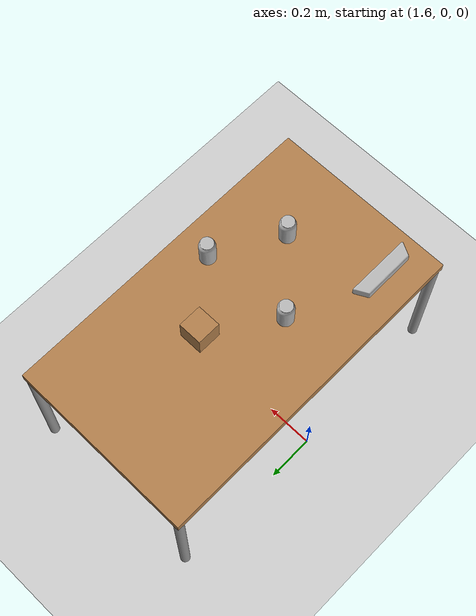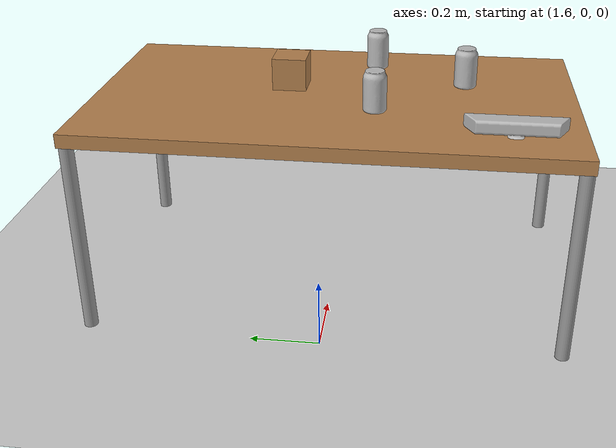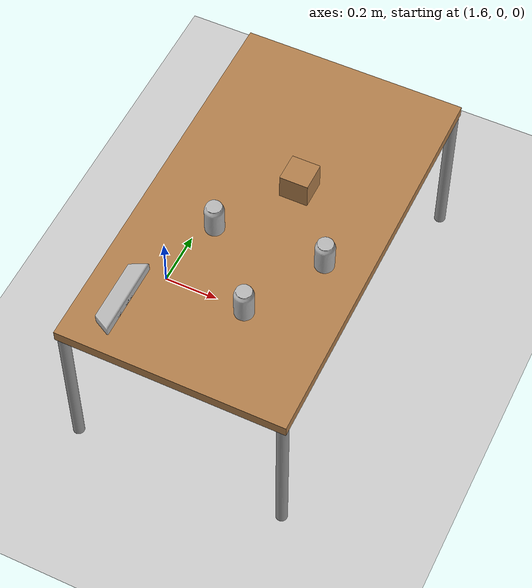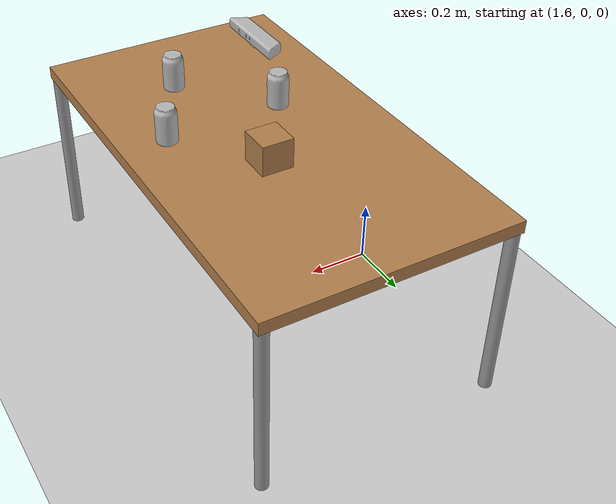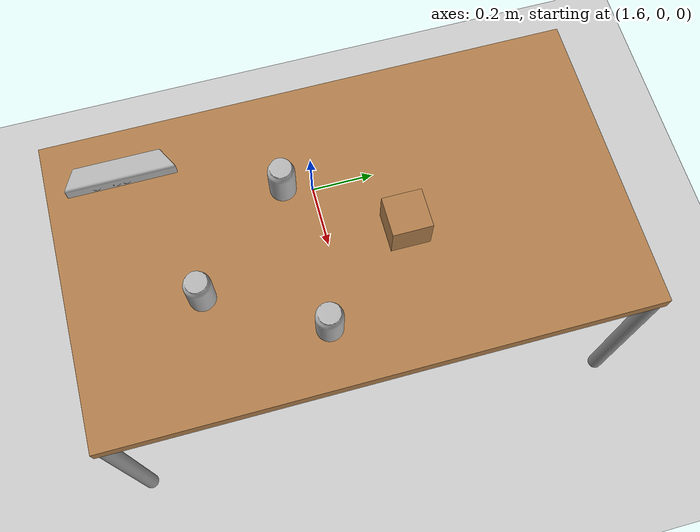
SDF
<sdf version="1.6">
 <world name="default">
  <light name="sun" type="directional">
   <pose>0 0 10 0 -0 0</pose>
   <diffuse>0.8 0.8 0.8 1</diffuse>
   <specular>0.1 0.1 0.1 1</specular>
   <attenuation>
    <range>1000</range>
    <constant>0.9</constant>
    <linear>0.01</linear>
    <quadratic>0.001</quadratic>
   </attenuation>
   <direction>-0.5 0.5 -1</direction>
  </light>
  <model name="ground_plane">
   <static>1</static>
   <link name="link">
    <collision name="collision">
     <geometry><plane><normal>0 0 1</normal><size>100 100</size></plane></geometry>
     <surface><friction><ode><mu>100</mu><mu2>50</mu2></ode></friction></surface>
    </collision>
    <visual name="visual">
     <cast_shadows>0</cast_shadows>
     <geometry><plane><normal>0 0 1</normal><size>100 100</size></plane></geometry>
     <material>
      <script><uri>file://media/materials/scripts/gazebo.material</uri><name>Gazebo/Grey</name></script>
     </material>
    </visual>
   </link>
  </model>
  <gravity>0 0 -9.8</gravity>
  <magnetic_field>6e-06 2.3e-05 -4.2e-05</magnetic_field>
  <atmosphere type="adiabatic"/>
  <physics name="default_physics" default="0" type="ode">
   <max_step_size>0.001</max_step_size>
   <real_time_factor>1</real_time_factor>
   <real_time_update_rate>1000</real_time_update_rate>
  </physics>
  <scene><ambient>0.4 0.4 0.4 1</ambient><background>0.7 0.7 0.7 1</background><shadows>1</shadows></scene>
  <spherical_coordinates>
   <surface_model>EARTH_WGS84</surface_model>
   <latitude_deg>0</latitude_deg>
   <longitude_deg>0</longitude_deg>
   <elevation>0</elevation>
   <heading_deg>0</heading_deg>
  </spherical_coordinates>
  <model name="table_short">
   <link name="link">
    <inertial>
     <inertia><ixx>1</ixx><ixy>0</ixy><ixz>0</ixz><iyy>1</iyy><iyz>0</iyz><izz>1</izz></inertia>
     <mass>1</mass>
    </inertial>
    <kinematic>1</kinematic>
    <visual name="visual1">
     <pose>0 0 0.6 0 -0 0</pose>
     <geometry><box><size>1.4 0.8 0.04</size></box></geometry>
     <material>
      <script><uri>file://media/materials/scripts/gazebo.material</uri><name>Gazebo/Wood</name></script>
      <ambient>1 1 1 1</ambient>
      <diffuse>1 1 1 1</diffuse>
      <specular>0.2 0.2 0.2 1</specular>
      <emissive>0 0 0 1</emissive>
      <shader type="vertex"><normal_map>__default__</normal_map></shader>
     </material>
    </visual>
    <visual name="front_left_leg">
     <pose>0.68 0.38 0.3 0 -0 0</pose>
     <geometry><cylinder><radius>0.02</radius><length>0.6</length></cylinder></geometry>
     <material>
      <script><uri>file://media/materials/scripts/gazebo.material</uri><name>Gazebo/Grey</name></script>
      <ambient>0.3 0.3 0.3 1</ambient>
      <diffuse>0.7 0.7 0.7 1</diffuse>
      <specular>0.01 0.01 0.01 1</specular>
      <emissive>0 0 0 1</emissive>
      <shader type="vertex"><normal_map>__default__</normal_map></shader>
     </material>
    </visual>
    <visual name="front_right_leg">
     <pose>0.68 -0.38 0.3 0 -0 0</pose>
     <geometry><cylinder><radius>0.02</radius><length>0.6</length></cylinder></geometry>
     <material>
      <script><uri>file://media/materials/scripts/gazebo.material</uri><name>Gazebo/Grey</name></script>
      <ambient>0.3 0.3 0.3 1</ambient>
      <diffuse>0.7 0.7 0.7 1</diffuse>
      <specular>0.01 0.01 0.01 1</specular>
      <emissive>0 0 0 1</emissive>
      <shader type="vertex"><normal_map>__default__</normal_map></shader>
     </material>
    </visual>
    <visual name="back_right_leg">
     <pose>-0.68 -0.38 0.3 0 -0 0</pose>
     <geometry><cylinder><radius>0.02</radius><length>0.6</length></cylinder></geometry>
     <material>
      <script><uri>file://media/materials/scripts/gazebo.material</uri><name>Gazebo/Grey</name></script>
      <ambient>0.3 0.3 0.3 1</ambient>
      <diffuse>0.7 0.7 0.7 1</diffuse>
      <specular>0.01 0.01 0.01 1</specular>
      <emissive>0 0 0 1</emissive>
      <shader type="vertex"><normal_map>__default__</normal_map></shader>
     </material>
    </visual>
    <visual name="back_left_leg">
     <pose>-0.68 0.38 0.3 0 -0 0</pose>
     <geometry><cylinder><radius>0.02</radius><length>0.6</length></cylinder></geometry>
     <material>
      <script><uri>file://media/materials/scripts/gazebo.material</uri><name>Gazebo/Grey</name></script>
      <ambient>0.3 0.3 0.3 1</ambient>
      <diffuse>0.7 0.7 0.7 1</diffuse>
      <specular>0.01 0.01 0.01 1</specular>
      <emissive>0 0 0 1</emissive>
      <shader type="vertex"><normal_map>__default__</normal_map></shader>
     </material>
    </visual>
    <collision name="front_left_leg">
     <pose>0.68 0.38 0.3 0 -0 0</pose>
     <geometry><cylinder><radius>0.02</radius><length>0.6</length></cylinder></geometry>
     <surface>
      <friction>
       <ode><mu>1</mu><mu2>1</mu2><fdir1>0 0 0</fdir1><slip1>0</slip1><slip2>0</slip2></ode>
       <torsional>
        <coefficient>1</coefficient>
        <patch_radius>0</patch_radius>
        <surface_radius>0</surface_radius>
        <use_patch_radius>1</use_patch_radius>
        <ode><slip>0</slip></ode>
       </torsional>
      </friction>
      <bounce><restitution_coefficient>0</restitution_coefficient><threshold>1e+06</threshold></bounce>
      <contact>
       <collide_without_contact>0</collide_without_contact>
       <collide_without_contact_bitmask>1</collide_without_contact_bitmask>
       <collide_bitmask>1</collide_bitmask>
       <ode>
        <soft_cfm>0</soft_cfm>
        <soft_erp>0.2</soft_erp>
        <kp>1e+13</kp>
        <kd>1</kd>
        <max_vel>0.01</max_vel>
        <min_depth>0</min_depth>
       </ode>
       <bullet>
        <split_impulse>1</split_impulse>
        <split_impulse_penetration_threshold>-0.01</split_impulse_penetration_threshold>
        <soft_cfm>0</soft_cfm>
        <soft_erp>0.2</soft_erp>
        <kp>1e+13</kp>
        <kd>1</kd>
       </bullet>
      </contact>
     </surface>
    </collision>
    <collision name="surface">
     <pose>0 0 0.6 0 -0 0</pose>
     <geometry><box><size>1.5 0.8 0.03</size></box></geometry>
     <surface>
      <friction>
       <ode><mu>0.6</mu><mu2>0.6</mu2><fdir1>0 0 0</fdir1><slip1>0</slip1><slip2>0</slip2></ode>
       <torsional>
        <coefficient>1</coefficient>
        <patch_radius>0</patch_radius>
        <surface_radius>0</surface_radius>
        <use_patch_radius>1</use_patch_radius>
        <ode><slip>0</slip></ode>
       </torsional>
      </friction>
      <bounce><restitution_coefficient>0</restitution_coefficient><threshold>1e+06</threshold></bounce>
      <contact>
       <collide_without_contact>0</collide_without_contact>
       <collide_without_contact_bitmask>1</collide_without_contact_bitmask>
       <collide_bitmask>1</collide_bitmask>
       <ode>
        <soft_cfm>0</soft_cfm>
        <soft_erp>0.2</soft_erp>
        <kp>1e+13</kp>
        <kd>1</kd>
        <max_vel>0.01</max_vel>
        <min_depth>0</min_depth>
       </ode>
       <bullet>
        <split_impulse>1</split_impulse>
        <split_impulse_penetration_threshold>-0.01</split_impulse_penetration_threshold>
        <soft_cfm>0</soft_cfm>
        <soft_erp>0.2</soft_erp>
        <kp>1e+13</kp>
        <kd>1</kd>
       </bullet>
      </contact>
     </surface>
    </collision>
    <collision name="back_right_leg">
     <pose>-0.68 -0.38 0.3 0 -0 0</pose>
     <geometry><cylinder><radius>0.02</radius><length>0.6</length></cylinder></geometry>
     <surface>
      <friction>
       <ode><mu>1</mu><mu2>1</mu2><fdir1>0 0 0</fdir1><slip1>0</slip1><slip2>0</slip2></ode>
       <torsional>
        <coefficient>1</coefficient>
        <patch_radius>0</patch_radius>
        <surface_radius>0</surface_radius>
        <use_patch_radius>1</use_patch_radius>
        <ode><slip>0</slip></ode>
       </torsional>
      </friction>
      <bounce><restitution_coefficient>0</restitution_coefficient><threshold>1e+06</threshold></bounce>
      <contact>
       <collide_without_contact>0</collide_without_contact>
       <collide_without_contact_bitmask>1</collide_without_contact_bitmask>
       <collide_bitmask>1</collide_bitmask>
       <ode>
        <soft_cfm>0</soft_cfm>
        <soft_erp>0.2</soft_erp>
        <kp>1e+13</kp>
        <kd>1</kd>
        <max_vel>0.01</max_vel>
        <min_depth>0</min_depth>
       </ode>
       <bullet>
        <split_impulse>1</split_impulse>
        <split_impulse_penetration_threshold>-0.01</split_impulse_penetration_threshold>
        <soft_cfm>0</soft_cfm>
        <soft_erp>0.2</soft_erp>
        <kp>1e+13</kp>
        <kd>1</kd>
       </bullet>
      </contact>
     </surface>
    </collision>
    <collision name="back_left_leg">
     <pose>-0.68 0.38 0.3 0 -0 0</pose>
     <geometry><cylinder><radius>0.02</radius><length>0.6</length></cylinder></geometry>
     <surface>
      <friction>
       <ode><mu>1</mu><mu2>1</mu2><fdir1>0 0 0</fdir1><slip1>0</slip1><slip2>0</slip2></ode>
       <torsional>
        <coefficient>1</coefficient>
        <patch_radius>0</patch_radius>
        <surface_radius>0</surface_radius>
        <use_patch_radius>1</use_patch_radius>
        <ode><slip>0</slip></ode>
       </torsional>
      </friction>
      <bounce><restitution_coefficient>0</restitution_coefficient><threshold>1e+06</threshold></bounce>
      <contact>
       <collide_without_contact>0</collide_without_contact>
       <collide_without_contact_bitmask>1</collide_without_contact_bitmask>
       <collide_bitmask>1</collide_bitmask>
       <ode>
        <soft_cfm>0</soft_cfm>
        <soft_erp>0.2</soft_erp>
        <kp>1e+13</kp>
        <kd>1</kd>
        <max_vel>0.01</max_vel>
        <min_depth>0</min_depth>
       </ode>
       <bullet>
        <split_impulse>1</split_impulse>
        <split_impulse_penetration_threshold>-0.01</split_impulse_penetration_threshold>
        <soft_cfm>0</soft_cfm>
        <soft_erp>0.2</soft_erp>
        <kp>1e+13</kp>
        <kd>1</kd>
       </bullet>
      </contact>
     </surface>
    </collision>
    <collision name="front_right_leg">
     <pose>0.68 -0.38 0.3 0 -0 0</pose>
     <geometry><cylinder><radius>0.02</radius><length>0.6</length></cylinder></geometry>
     <surface>
      <friction>
       <ode><mu>1</mu><mu2>1</mu2><fdir1>0 0 0</fdir1><slip1>0</slip1><slip2>0</slip2></ode>
       <torsional>
        <coefficient>1</coefficient>
        <patch_radius>0</patch_radius>
        <surface_radius>0</surface_radius>
        <use_patch_radius>1</use_patch_radius>
        <ode><slip>0</slip></ode>
       </torsional>
      </friction>
      <bounce><restitution_coefficient>0</restitution_coefficient><threshold>1e+06</threshold></bounce>
      <contact>
       <collide_without_contact>0</collide_without_contact>
       <collide_without_contact_bitmask>1</collide_without_contact_bitmask>
       <collide_bitmask>1</collide_bitmask>
       <ode>
        <soft_cfm>0</soft_cfm>
        <soft_erp>0.2</soft_erp>
        <kp>1e+13</kp>
        <kd>1</kd>
        <max_vel>0.01</max_vel>
        <min_depth>0</min_depth>
       </ode>
       <bullet>
        <split_impulse>1</split_impulse>
        <split_impulse_penetration_threshold>-0.01</split_impulse_penetration_threshold>
        <soft_cfm>0</soft_cfm>
        <soft_erp>0.2</soft_erp>
        <kp>1e+13</kp>
        <kd>1</kd>
       </bullet>
      </contact>
     </surface>
    </collision>
   </link>
   <static>0</static>
   <pose>1.99989 0.000488 -0.011053 0.000242 -0.001466 1.5708</pose>
  </model>
  <model name="coke_can">
   <link name="link">
    <inertial>
     <mass>0.39</mass>
     <inertia>
      <ixx>0.00055575</ixx>
      <ixy>0</ixy>
      <ixz>0</ixz>
      <iyy>0.00055575</iyy>
      <iyz>0</iyz>
      <izz>0.0001755</izz>
     </inertia>
    </inertial>
    <collision name="collision">
     <pose>0.003937 0.004724 -0.18 0 -0 0</pose>
     <geometry><mesh><uri>model://coke_can/meshes/coke_can.dae</uri><scale>1 1 1</scale></mesh></geometry>
    </collision>
    <visual name="visual">
     <pose>0.003937 0.004724 -0.18 0 -0 0</pose>
     <geometry><mesh><uri>model://coke_can/meshes/coke_can.dae</uri><scale>1 1 1</scale></mesh></geometry>
    </visual>
   </link>
   <pose>2.10329 -0.377683 0.600802 -0.009763 0.004214 0.029506</pose>
  </model>
  <model name="kinect">
   <pose>1.76562 -0.506623 0.639263 0.00146 0.000262 7.3e-05</pose>
   <link name="link">
    <inertial>
     <mass>0.1</mass>
     <inertia><ixx>1</ixx><ixy>0</ixy><ixz>0</ixz><iyy>1</iyy><iyz>0</iyz><izz>1</izz></inertia>
    </inertial>
    <collision name="collision"><geometry><box><size>0.073 0.276 0.072</size></box></geometry></collision>
    <visual name="visual">
     <geometry><mesh><uri>model://kinect/meshes/kinect.dae</uri><scale>1 1 1</scale></mesh></geometry>
    </visual>
    <sensor name="camera" type="depth">
     <update_rate>20</update_rate>
     <camera name="__default__">
      <horizontal_fov>1.0472</horizontal_fov>
      <image><width>640</width><height>480</height><format>R8G8B8</format></image>
      <clip><near>0.05</near><far>3</far></clip>
     </camera>
    </sensor>
   </link>
  </model>
  <model name="wood_cube_10cm">
   <link name="link">
    <pose>0 0 0.05 0 -0 0</pose>
    <inertial>
     <mass>0.5167</mass>
     <inertia>
      <ixx>0.000861167</ixx>
      <ixy>0</ixy>
      <ixz>0</ixz>
      <iyy>0.000861167</iyy>
      <iyz>0</iyz>
      <izz>0.000861167</izz>
     </inertia>
    </inertial>
    <collision name="collision">
     <geometry><box><size>0.1 0.1 0.1</size></box></geometry>
     <surface>
      <contact>
       <poissons_ratio>0.347</poissons_ratio>
       <elastic_modulus>8.8e+09</elastic_modulus>
       <ode><kp>100000</kp><kd>100</kd><max_vel>100</max_vel><min_depth>0.001</min_depth></ode>
      </contact>
      <friction>
       <torsional>
        <coefficient>1</coefficient>
        <use_patch_radius>0</use_patch_radius>
        <surface_radius>0.01</surface_radius>
       </torsional>
      </friction>
     </surface>
    </collision>
    <visual name="visual">
     <geometry><box><size>0.1 0.1 0.1</size></box></geometry>
     <material>
      <script><uri>file://media/materials/scripts/gazebo.material</uri><name>Gazebo/Wood</name></script>
     </material>
    </visual>
   </link>
   <pose>2.05231 0.139194 0.604126 0.001467 0.000242 -0</pose>
  </model>
  <model name="coke_can_clone">
   <link name="link">
    <inertial>
     <mass>0.39</mass>
     <inertia>
      <ixx>0.00055575</ixx>
      <ixy>0</ixy>
      <ixz>0</ixz>
      <iyy>0.00055575</iyy>
      <iyz>0</iyz>
      <izz>0.0001755</izz>
     </inertia>
    </inertial>
    <collision name="collision">
     <pose>0.003937 0.004724 -0.18 0 -0 0</pose>
     <geometry><mesh><uri>model://coke_can/meshes/coke_can.dae</uri><scale>1 1 1</scale></mesh></geometry>
    </collision>
    <visual name="visual">
     <pose>0.003937 0.004724 -0.18 0 -0 0</pose>
     <geometry><mesh><uri>model://coke_can/meshes/coke_can.dae</uri><scale>1 1 1</scale></mesh></geometry>
    </visual>
   </link>
   <pose>1.87316 -0.124086 0.60122 -0.009716 0.004236 0.03057</pose>
  </model>
  <model name="coke_can_clone_0">
   <link name="link">
    <inertial>
     <mass>0.39</mass>
     <inertia>
      <ixx>0.00055575</ixx>
      <ixy>0</ixy>
      <ixz>0</ixz>
      <iyy>0.00055575</iyy>
      <iyz>0</iyz>
      <izz>0.0001755</izz>
     </inertia>
    </inertial>
    <collision name="collision">
     <pose>0.003937 0.004724 -0.18 0 -0 0</pose>
     <geometry><mesh><uri>model://coke_can/meshes/coke_can.dae</uri><scale>1 1 1</scale></mesh></geometry>
    </collision>
    <visual name="visual">
     <pose>0.003937 0.004724 -0.18 0 -0 0</pose>
     <geometry><mesh><uri>model://coke_can/meshes/coke_can.dae</uri><scale>1 1 1</scale></mesh></geometry>
    </visual>
   </link>
   <pose>2.25437 -0.104345 0.601163 -0.009739 0.00422 0.029396</pose>
  </model>
 </world>
</sdf>
